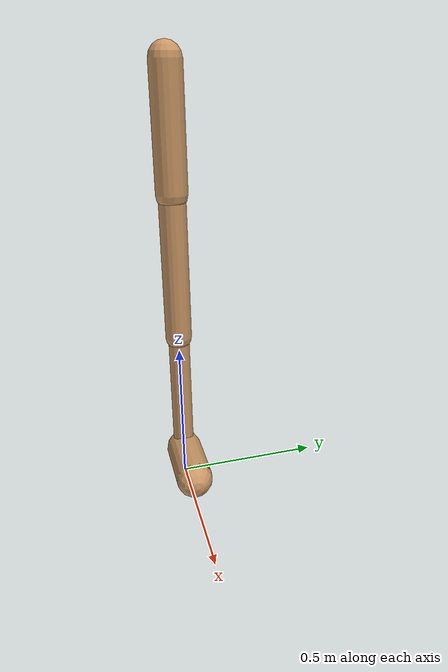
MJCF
<mujoco model="walker2d">
  <compiler angle="degree" coordinate="global" inertiafromgeom="true" />
  <default>
    <joint armature="0.01" damping=".1" limited="true" />
    <geom conaffinity="0" condim="3" contype="1" density="1000" friction="0.8 .1 .1" rgba="0.8 0.6 .4 1" />
  </default>
  <option integrator="RK4" timestep="0.002" />
  <worldbody>

    <body name="torso" pos="0 0 0.09413098662860124">
      <joint armature="0" axis="1 0 0" damping="0" limited="false" name="ignorex" pos="0 0 0" stiffness="0" type="slide" />
      <joint armature="0" axis="0 0 1" damping="0" limited="false" name="ignorez" pos="0 0 0" ref="1.25" stiffness="0" type="slide" />
      <joint armature="0" axis="0 1 0" damping="0" limited="false" name="ignorey" pos="0 0 0" stiffness="0" type="hinge" />
      <geom fromto="0 0 1.45 0 0 1.05" name="torso_geom" size="0.05252655643654436" type="capsule" />
      <body name="thigh">
        <joint axis="0 -1 0" name="thigh_joint" pos="0 0 1.05" range="-150 0" type="hinge" />
        <geom fromto="0.0 0.0 1.05 0.0 0.0 0.5554116379127678" name="thigh_geom" size="0.04513894464130738" type="capsule" />
        <body name="leg" pos="0.0 0.0 -0.04458836208723216">
          <joint axis="0 -1 0" name="leg_joint" pos="0 0 0.6" range="-150 0" type="hinge" />
          <geom fromto="0.0 0.0 0.6 0.0 0.0 0.05045737545863094" name="leg_geom" size="0.0361111557130459" type="capsule" />
          <body name="foot" pos="0.0 0.0 -0.04954262454136907">
            <joint axis="0 -1 0" name="foot_joint" pos="0 0 0.1" range="-45 45" type="hinge" />
            <geom fromto="0.0 0.0 0.1 0.1994664696213203 0.0 0.1" name="foot_geom" size="0.061871118801012585" type="capsule" />
          </body>
        </body>
      </body>

      <body name="thigh_left">
        <joint axis="0 -1 0" name="thigh_left_joint" pos="0 0 1.05" range="-150 0" type="hinge" />
        <geom fromto="0.0 0.0 1.05 0.0 0.0 0.5554116379127678" name="thigh_left_geom" rgba=".7 .3 .6 1" size="0.04513894464130738" type="capsule" />
        <body name="leg_left" pos="0.0 0.0 -0.04458836208723216">
          <joint axis="0 -1 0" name="leg_left_joint" pos="0 0 0.6" range="-150 0" type="hinge" />
          <geom fromto="0.0 0.0 0.6 0.0 0.0 0.05045737545863094" name="leg_left_geom" rgba=".7 .3 .6 1" size="0.0361111557130459" type="capsule" />
          <body name="foot_left" pos="0.0 0.0 -0.04954262454136907">
            <joint axis="0 -1 0" name="foot_left_joint" pos="0 0 0.1" range="-45 45" type="hinge" />
            <geom fromto="0.0 0.0 0.1 0.1994664696213203 0.0 0.1" name="foot_left_geom" rgba=".7 .3 .6 1" size="0.061871118801012585" type="capsule" />
          </body>
        </body>
      </body>
    </body>
  </worldbody>
  <actuator>

    <motor ctrllimited="true" ctrlrange="-1.0 1.0" gear="100" joint="thigh_joint" />
    <motor ctrllimited="true" ctrlrange="-1.0 1.0" gear="100" joint="leg_joint" />
    <motor ctrllimited="true" ctrlrange="-1.0 1.0" gear="100" joint="foot_joint" />
    <motor ctrllimited="true" ctrlrange="-1.0 1.0" gear="100" joint="thigh_left_joint" />
    <motor ctrllimited="true" ctrlrange="-1.0 1.0" gear="100" joint="leg_left_joint" />
    <motor ctrllimited="true" ctrlrange="-1.0 1.0" gear="100" joint="foot_left_joint" />

  </actuator>
</mujoco>
